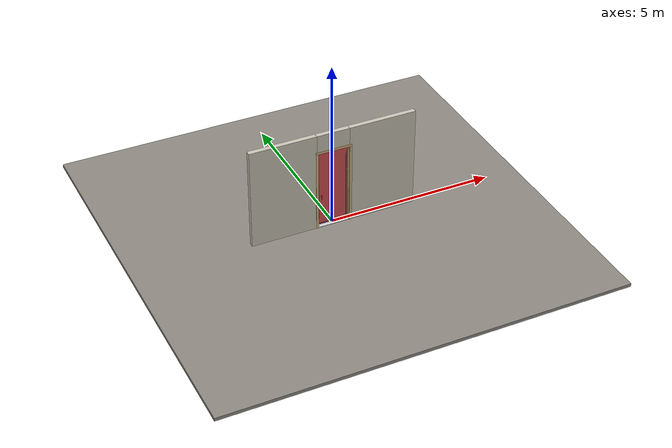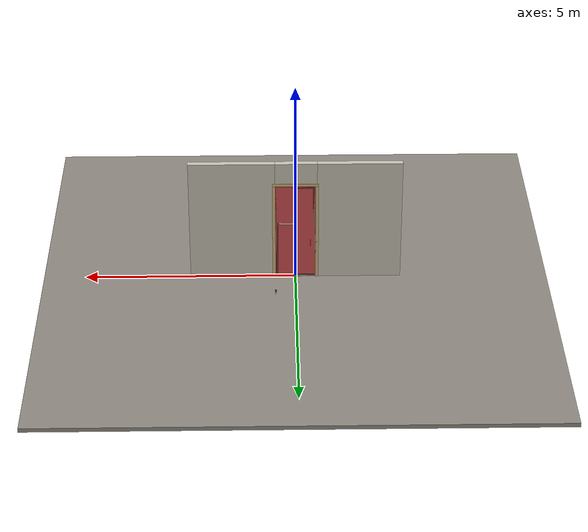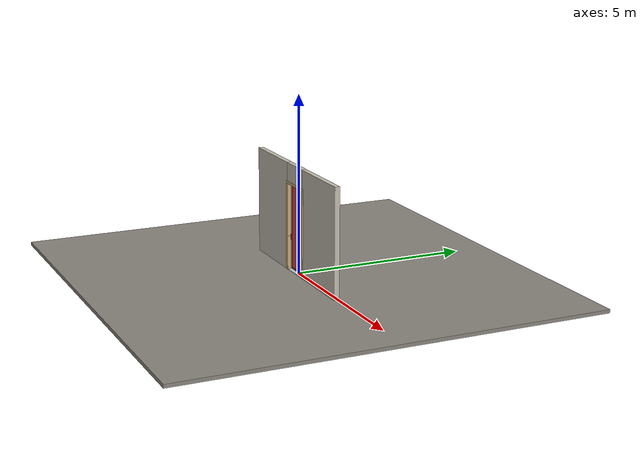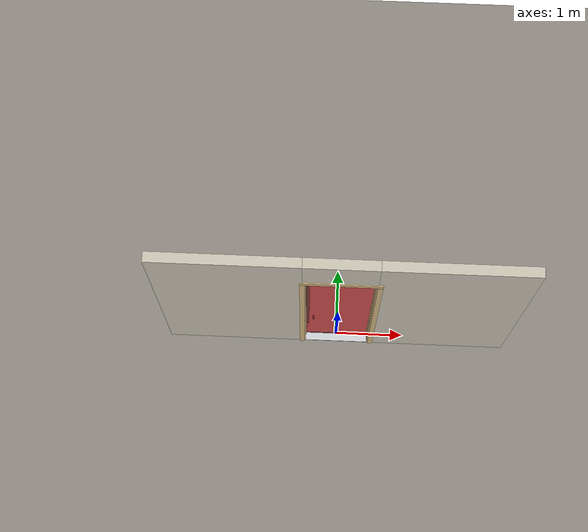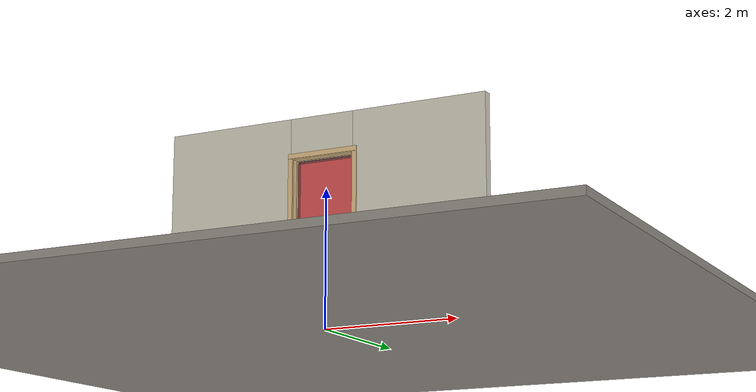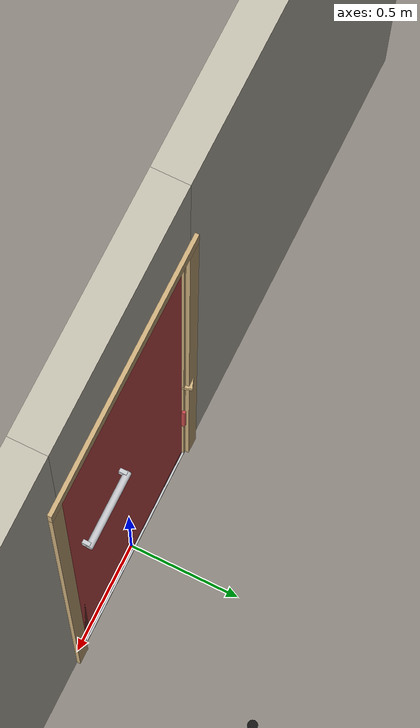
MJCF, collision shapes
<?xml version="1.0" ?>
<mujoco model="db0101_swing_single_full">
  <compiler angle="radian" meshdir="../../hardware" texturedir="../../textures" autolimits="true" inertiafromgeom="false"/>
  <option timestep="0.002" integrator="implicitfast" cone="elliptic" impratio="10" noslip_iterations="3">
    <flag multiccd="enable"/>
  </option>
  <size memory="16M"/>
  <default>
    <geom condim="4" solref="0.005 1" solimp="0.95 0.99 0.001"/>
    <joint solreflimit="0.005 1" solimplimit="0.95 0.99 0.001"/>
    <tendon solreflimit="0.005 1"/>
    <equality solref="0.002 1"/>
  </default>
  <visual>
    <headlight ambient="0.4 0.4 0.4" diffuse="0.7 0.7 0.7" specular="0.2 0.2 0.2"/>
    <quality shadowsize="4096"/>
    <map znear="0.01" zfar="60"/>
  </visual>
  <asset>
    <mesh name="hinge_11b97d6068" file="hinge_11b97d6068.obj"/>
    <mesh name="hinge_jamb_29995db8a9" file="hinge_jamb_29995db8a9.obj"/>
    <mesh name="peephole_f829311a59" file="peephole_f829311a59.obj"/>
    <mesh name="pull_1e5d69a91a" file="pull_1e5d69a91a.obj"/>
    <material name="mat_floor" rgba="0.55 0.53 0.5 1" specular="0.2" shininess="0.15" reflectance="0"/>
    <material name="mat_wall" rgba="0.78 0.76 0.7 1" specular="0.2" shininess="0.1" reflectance="0"/>
    <material name="mat_leaf" rgba="0.2 0.2 0.2 0.5" specular="0.2" shininess="0.2" reflectance="0.1"/>
    <material name="mat_mesh_infill" rgba="0.6 0.62 0.64 0.55" specular="0.68" shininess="0.3" reflectance="0.1"/>
    <material name="mat_hinge" rgba="0.65 0.66 0.68 1" specular="0.74" shininess="0.5" reflectance="0.36"/>
    <material name="mat_op_stainless" rgba="0.75 0.76 0.77 1" specular="0.8" shininess="0.65" reflectance="0.4"/>
    <material name="mat_bolt" rgba="0.85 0.66 0.3 1" specular="0.8" shininess="0.75" reflectance="0.4"/>
    <material name="mat_frame" rgba="0.82 0.7 0.5 1" specular="0.2" shininess="0.45" reflectance="0"/>
    <material name="mat_seal" rgba="0.1 0.1 0.1 1" specular="0.2" shininess="0.1" reflectance="0"/>
    <material name="mat_threshold" rgba="0.8 0.81 0.83 1" specular="0.8" shininess="0.6" reflectance="0.4"/>
    <material name="mat_closer" rgba="0.8 0.81 0.83 1" specular="0.8" shininess="0.6" reflectance="0.4"/>
    <material name="mat_peephole" rgba="0.85 0.66 0.3 1" specular="0.8" shininess="0.75" reflectance="0.4"/>
    <material name="mat_drip" rgba="0.8 0.81 0.83 1" specular="0.8" shininess="0.6" reflectance="0.4"/>
    <material name="mat_transom" rgba="0.85 0.92 0.95 0.25" specular="0.2" shininess="0.95" reflectance="0.1"/>
    <material name="mat_bumper_stop" rgba="0.08 0.08 0.08 1" specular="0.2" shininess="0.1" reflectance="0"/>
    <material name="mat_stop_base" rgba="0.9 0.9 0.92 1" specular="0.8" shininess="0.9" reflectance="0.4"/>
    <texture name="skybox" type="skybox" builtin="gradient" rgb1="0.6 0.7 0.85" rgb2="0.9 0.92 0.95" width="256" height="256"/>
  </asset>
  <worldbody>
    <light name="sun" pos="1.5 -2.5 4" dir="-0.3 0.5 -0.8" directional="true" diffuse="0.8 0.8 0.8" specular="0.3 0.3 0.3" castshadow="true"/>
    <light name="fill" pos="-1.5 2.5 3" dir="0.3 -0.5 -0.7" directional="true" diffuse="0.35 0.35 0.4" castshadow="false"/>
    <camera name="robot_view" pos="0 -2.975812 2.043887" xyaxes="1 0 0 0 0.26963 0.962964" fovy="52"/>
    <camera name="far_view" pos="0 2.869813 2.043887" xyaxes="-1 0 0 0 -0.26963 0.962964" fovy="52"/>
    <camera name="iso" pos="-2.221337 -2.508163 2.511538" xyaxes="0.741536 -0.670913 0 0.242917 0.268487 0.932151" fovy="46"/>
    <camera name="detail_handle" pos="-0.1715 -0.8725 1.245" xyaxes="0.97561 0.219512 0 -0.070934 0.315262 0.94635" fovy="38"/>
    <geom name="floor" type="box" size="6 6 0.05" pos="0 0 -0.05" material="mat_floor" group="0" contype="1" conaffinity="1" friction="0.8 0.005 0.0001" density="2400"/>
    <geom name="wall_left" type="box" size="0.99525 0.0725 1.5255" pos="-1.50475 -0.053 1.5255" material="mat_wall" group="0" contype="1" conaffinity="1" friction="0.6 0.005 0.0001" density="800"/>
    <geom name="wall_right" type="box" size="1.01025 0.0725 1.5255" pos="1.48975 -0.053 1.5255" material="mat_wall" group="0" contype="1" conaffinity="1" friction="0.6 0.005 0.0001" density="800"/>
    <geom name="wall_header" type="box" size="0.4945 0.0725 0.2755" pos="-0.015 -0.053 2.7755" material="mat_wall" group="0" contype="1" conaffinity="1" friction="0.6 0.005 0.0001" density="800"/>
    <geom name="hinge_0_jamb" type="mesh" mesh="hinge_jamb_29995db8a9" pos="0.4575 0.0195 0.267" quat="0 0 0 1" material="mat_hinge" group="1" contype="0" conaffinity="0" density="7850"/>
    <geom name="hinge_1_jamb" type="mesh" mesh="hinge_jamb_29995db8a9" pos="0.4575 0.0195 0.933667" quat="0 0 0 1" material="mat_hinge" group="1" contype="0" conaffinity="0" density="7850"/>
    <geom name="hinge_2_jamb" type="mesh" mesh="hinge_jamb_29995db8a9" pos="0.4575 0.0195 1.600333" quat="0 0 0 1" material="mat_hinge" group="1" contype="0" conaffinity="0" density="7850"/>
    <geom name="hinge_3_jamb" type="mesh" mesh="hinge_jamb_29995db8a9" pos="0.4575 0.0195 2.267" quat="0 0 0 1" material="mat_hinge" group="1" contype="0" conaffinity="0" density="7850"/>
    <geom name="jamb_hinge" type="box" size="0.0095 0.0725 1.2255" pos="0.47 -0.053 1.2255" material="mat_frame" group="0" contype="1" conaffinity="1" friction="0.6 0.005 0.0001" density="400"/>
    <geom name="strike_965_wall_n" type="box" size="0.0245 0.06 0.0115" pos="-0.485 -0.0655 0.965" material="mat_frame" group="0" contype="1" conaffinity="1" friction="0.6 0.005 0.0001" density="400"/>
    <geom name="strike_965_wall_p" type="box" size="0.0245 0.008 0.0115" pos="-0.485 0.0135 0.965" material="mat_frame" group="0" contype="1" conaffinity="1" friction="0.6 0.005 0.0001" density="400"/>
    <geom name="strike_965_ramp" type="box" size="0.0245 0.015977 0.0115" pos="-0.489002 0.028066 0.965" quat="0.984601 0 0 0.174819" material="mat_frame" group="0" contype="1" conaffinity="1" friction="0.12 0.005 0.0001" density="400"/>
    <geom name="strike_965_back" type="box" size="0.0175 0.0055 0.0115" pos="-0.492 0 0.965" material="mat_frame" group="0" contype="1" conaffinity="1" friction="0.6 0.005 0.0001" density="400"/>
    <geom name="jamb_strike_0" type="box" size="0.0245 0.0725 0.47675" pos="-0.485 -0.053 0.47675" material="mat_frame" group="0" contype="1" conaffinity="1" friction="0.6 0.005 0.0001" density="400"/>
    <geom name="jamb_strike_1" type="box" size="0.0245 0.0725 0.73725" pos="-0.485 -0.053 1.71375" material="mat_frame" group="0" contype="1" conaffinity="1" friction="0.6 0.005 0.0001" density="400"/>
    <geom name="jamb_head" type="box" size="0.4945 0.0725 0.0095" pos="-0.015 -0.053 2.4605" material="mat_frame" group="0" contype="1" conaffinity="1" friction="0.6 0.005 0.0001" density="400"/>
    <geom name="head_stud" type="box" size="0.4945 0.0725 0.015" pos="-0.015 -0.053 2.485" material="mat_wall" group="0" contype="1" conaffinity="1" friction="0.6 0.005 0.0001" density="500"/>
    <geom name="stop_hinge" type="box" size="0.0055 0.016 1.2255" pos="0.455 -0.029 1.2255" material="mat_frame" group="0" contype="1" conaffinity="1" friction="0.6 0.005 0.0001" density="400"/>
    <geom name="stop_strike" type="box" size="0.0055 0.016 1.2255" pos="-0.455 -0.029 1.2255" material="mat_frame" group="0" contype="1" conaffinity="1" friction="0.6 0.005 0.0001" density="400"/>
    <geom name="stop_head" type="box" size="0.4605 0.016 0.0055" pos="0 -0.029 2.4455" material="mat_frame" group="0" contype="1" conaffinity="1" friction="0.6 0.005 0.0001" density="400"/>
    <geom name="seal_hinge" type="box" size="0.004 0.0015 1.2255" pos="0.4575 -0.014 1.2255" material="mat_seal" group="1" contype="0" conaffinity="0" density="1100"/>
    <geom name="seal_strike" type="box" size="0.004 0.0015 1.2255" pos="-0.4575 -0.014 1.2255" material="mat_seal" group="1" contype="0" conaffinity="0" density="1100"/>
    <geom name="seal_head" type="box" size="0.4405 0.0015 0.008" pos="0 -0.014 2.439" material="mat_seal" group="1" contype="0" conaffinity="0" density="1100"/>
    <geom name="casing_l_n" type="box" size="0.035 0.008 1.235" pos="-0.5095 -0.1335 1.2255" material="mat_frame" group="2" contype="0" conaffinity="0" density="400"/>
    <geom name="casing_r_n" type="box" size="0.035 0.008 1.235" pos="0.5095 -0.1335 1.2255" material="mat_frame" group="2" contype="0" conaffinity="0" density="400"/>
    <geom name="casing_h_n" type="box" size="0.5445 0.008 0.035" pos="0 -0.1335 2.5" material="mat_frame" group="2" contype="0" conaffinity="0" density="400"/>
    <geom name="casing_l_p" type="box" size="0.035 0.008 1.235" pos="-0.5095 0.0275 1.2255" material="mat_frame" group="2" contype="0" conaffinity="0" density="400"/>
    <geom name="casing_r_p" type="box" size="0.035 0.008 1.235" pos="0.5095 0.0275 1.2255" material="mat_frame" group="2" contype="0" conaffinity="0" density="400"/>
    <geom name="casing_h_p" type="box" size="0.5445 0.008 0.035" pos="0 0.0275 2.5" material="mat_frame" group="2" contype="0" conaffinity="0" density="400"/>
    <geom name="threshold" type="box" size="0.4795 0.0725 0.0065" pos="0 -0.053 0.0065" material="mat_threshold" group="0" contype="1" conaffinity="1" friction="0.5 0.005 0.0001" density="2700"/>
    <geom name="weather_drip_cap" type="box" size="0.5105 0.03 0.008" pos="0 -0.03 2.496" material="mat_drip" group="2" contype="0" conaffinity="0" density="2700"/>
    <geom name="weather_drip_cap_bracket" type="box" size="0.15315 0.01025 0.005" pos="0 0.00975 2.496" material="mat_drip" group="2" contype="0" conaffinity="0" density="7850"/>
    <geom name="transom_glass" type="box" size="0.4605 0.003 0.18" pos="0 0 2.701" material="mat_transom" group="0" contype="1" conaffinity="1" friction="0.6 0.005 0.0001" density="2500"/>
    <geom name="door_stop_base" type="cylinder" size="0.022 0.003" pos="0.4735 0.7964 0.003" material="mat_stop_base" group="0" contype="1" conaffinity="1" friction="0.6 0.005 0.0001" density="7850"/>
    <geom name="door_stop_post" type="cylinder" size="0.012 0.0255" pos="0.4735 0.7964 0.0315" material="mat_stop_base" group="0" contype="1" conaffinity="1" friction="0.6 0.005 0.0001" density="7850"/>
    <geom name="door_stop_bumper" type="cylinder" size="0.022 0.02" pos="0.4735 0.7964 0.077" material="mat_bumper_stop" group="0" contype="1" conaffinity="1" friction="0.6 0.005 0.0001" density="1100"/>
    <site name="approach_point" pos="0 -1.5 0" quat="1 0 0 0" size="0.05" rgba="0.2 0.9 0.2 0.5" group="4"/>
    <site name="goal_point" pos="0 1.5 0" quat="1 0 0 0" size="0.05" rgba="0.2 0.9 0.2 0.5" group="4"/>
    <site name="door_plane_center" pos="0 0 1.2255" quat="1 0 0 0" size="0.02" rgba="0.2 0.9 0.2 0.5" group="4"/>
    <body name="leaf" pos="0.4605 0 0">
      <inertial pos="-0.459228 0.000246 1.231646" mass="152.548168" quat="0.500722 -0.500294 -0.499751 -0.499233" diaginertia="10.75938983 74.42156308 85.154699444"/>
      <joint name="leaf_hinge" type="hinge" axis="0 0 -1" pos="-0.003 0.0195 0" limited="true" range="0 1.570796" solreflimit="0.02 1" damping="4.307281" frictionloss="2.670283" stiffness="3" springref="-1.27" armature="0.02"/>
      <geom name="leaf_slab_col" type="box" size="0.457 0.0125 1.215" pos="-0.46 0 1.232" material="mat_leaf" group="3" contype="1" conaffinity="1" rgba="0.8 0.3 0.3 0.25" friction="0.35 0.005 0.0001" density="1"/>
      <geom name="leaf_rail_b" type="box" size="0.457 0.0125 0.0225" pos="-0.46 0 0.0395" material="mat_leaf" group="1" contype="0" conaffinity="0" density="1"/>
      <geom name="leaf_rail_t" type="box" size="0.457 0.0125 0.0225" pos="-0.46 0 2.4245" material="mat_leaf" group="1" contype="0" conaffinity="0" density="1"/>
      <geom name="leaf_stile_h" type="box" size="0.0225 0.0125 1.215" pos="-0.0255 0 1.232" material="mat_leaf" group="1" contype="0" conaffinity="0" density="1"/>
      <geom name="leaf_stile_l" type="box" size="0.0225 0.0125 1.215" pos="-0.8945 0 1.232" material="mat_leaf" group="1" contype="0" conaffinity="0" density="1"/>
      <geom name="leaf_mesh" type="box" size="0.412 0.0015 1.17" pos="-0.46 0 1.232" material="mat_mesh_infill" group="1" contype="0" conaffinity="0" density="1"/>
      <geom name="hinge_0" type="mesh" mesh="hinge_11b97d6068" pos="-0.003 0.0195 0.267" quat="0 0 0 1" material="mat_hinge" group="1" contype="0" conaffinity="0" density="7850"/>
      <geom name="hinge_1" type="mesh" mesh="hinge_11b97d6068" pos="-0.003 0.0195 0.933667" quat="0 0 0 1" material="mat_hinge" group="1" contype="0" conaffinity="0" density="7850"/>
      <geom name="hinge_2" type="mesh" mesh="hinge_11b97d6068" pos="-0.003 0.0195 1.600333" quat="0 0 0 1" material="mat_hinge" group="1" contype="0" conaffinity="0" density="7850"/>
      <geom name="hinge_3" type="mesh" mesh="hinge_11b97d6068" pos="-0.003 0.0195 2.267" quat="0 0 0 1" material="mat_hinge" group="1" contype="0" conaffinity="0" density="7850"/>
      <geom name="leaf_pull_n" type="mesh" mesh="pull_1e5d69a91a" pos="-0.812 -0.0125 0.965" quat="0 0 -0.707107 0.707107" material="mat_op_stainless" group="1" contype="0" conaffinity="0" density="3000"/>
      <geom name="leaf_pull_col_n" type="capsule" size="0.0095 0.08" pos="-0.812 -0.0725 0.965" material="mat_op_stainless" group="3" contype="1" conaffinity="1" rgba="0.8 0.3 0.3 0.25" friction="0.7 0.01 0.0001" density="3000"/>
      <geom name="leaf_pull_p" type="mesh" mesh="pull_1e5d69a91a" pos="-0.812 0.0125 0.965" quat="0 0 0.707107 0.707107" material="mat_op_stainless" group="1" contype="0" conaffinity="0" density="3000"/>
      <geom name="leaf_pull_col_p" type="capsule" size="0.0095 0.08" pos="-0.812 0.0725 0.965" material="mat_op_stainless" group="3" contype="1" conaffinity="1" rgba="0.8 0.3 0.3 0.25" friction="0.7 0.01 0.0001" density="3000"/>
      <geom name="leaf_latch_bolt_faceplate" type="box" size="0.0006 0.01 0.0215" pos="-0.9164 0 0.965" material="mat_bolt" group="1" contype="0" conaffinity="0" density="8500"/>
      <geom name="closer_pneumatic" type="cylinder" size="0.015 0.16" pos="-0.25 0.0425 1.458" quat="0.707107 0 0.707107 0" material="mat_closer" group="1" contype="0" conaffinity="0" density="2700"/>
      <geom name="closer_pneumatic_bracket_0" type="box" size="0.008 0.016 0.018" pos="-0.1 0.0285 1.458" material="mat_closer" group="1" contype="0" conaffinity="0" density="2700"/>
      <geom name="closer_pneumatic_bracket_1" type="box" size="0.008 0.016 0.018" pos="-0.4 0.0285 1.458" material="mat_closer" group="1" contype="0" conaffinity="0" density="2700"/>
      <geom name="peephole" type="mesh" mesh="peephole_f829311a59" pos="-0.46 -0.0125 1.517" quat="0 0 -0.707107 0.707107" material="mat_peephole" group="2" contype="0" conaffinity="0" density="8500"/>
      <site name="leaf_pull_grip_n" pos="-0.812 -0.0725 0.965" quat="1 0 0 0" size="0.012" rgba="0.2 0.9 0.2 0.5" group="4"/>
      <site name="leaf_pull_grip_p" pos="-0.812 0.0725 0.965" quat="1 0 0 0" size="0.012" rgba="0.2 0.9 0.2 0.5" group="4"/>
      <site name="leaf_edge_mid" pos="-0.917 0 1.215" quat="1 0 0 0" size="0.02" rgba="0.2 0.9 0.2 0.5" group="4"/>
      <body name="leaf_latch_bolt" pos="-0.917 0 0.965">
        <inertial pos="0.008 0 0" mass="0.014242" quat="0 0 -0.707107 0.707107" diaginertia="0.00000011 0.000001386 0.000001386"/>
        <joint name="leaf_latch_bolt_slide" type="slide" axis="1 0 0" limited="true" range="0 0.01" damping="2" frictionloss="0.3" stiffness="300" springref="-0.006667" armature="0.1"/>
        <geom name="leaf_latch_bolt_capsule" type="capsule" size="0.004 0.014" pos="0.008 0 0" quat="0.707107 0 -0.707107 0" material="mat_bolt" group="0" contype="1" conaffinity="1" friction="0.2 0.005 0.0001" density="8500"/>
      </body>
    </body>
  </worldbody>
  <sensor>
    <jointpos name="leaf_hinge_pos" joint="leaf_hinge"/>
    <jointvel name="leaf_hinge_vel" joint="leaf_hinge"/>
    <jointpos name="leaf_latch_bolt_slide_pos" joint="leaf_latch_bolt_slide"/>
    <jointvel name="leaf_latch_bolt_slide_vel" joint="leaf_latch_bolt_slide"/>
  </sensor>
</mujoco>
